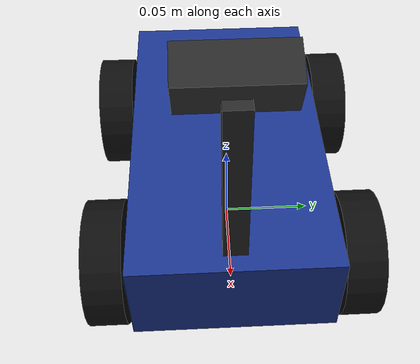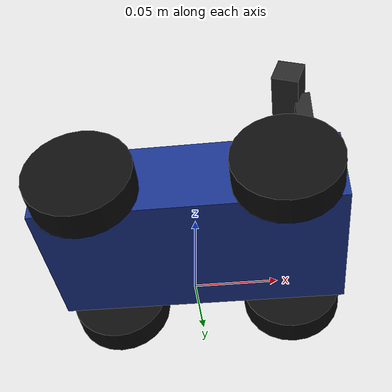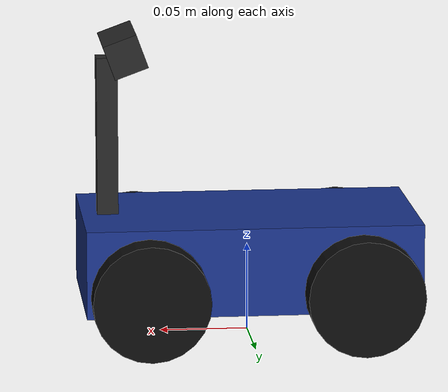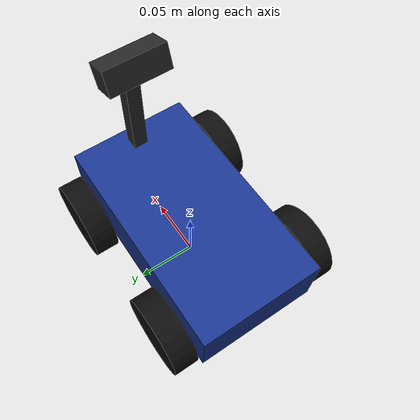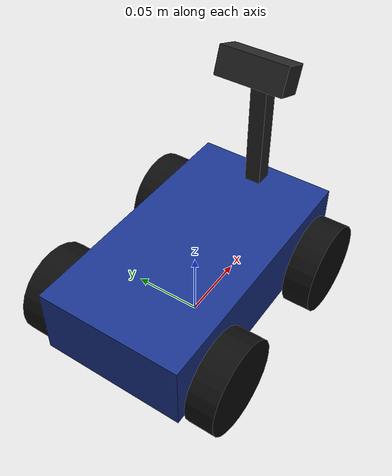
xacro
<?xml version="1.0"?>
<robot xmlns:xacro="http://www.ros.org/wiki/xacro" name="fastrobox">

    <xacro:property name="chassis_length" value="0.19" />
    <xacro:property name="chassis_width" value="0.104" />
    <xacro:property name="chassis_height" value="0.05" />
    <xacro:property name="chassis_bottom" value="0.02" />
    <xacro:property name="chassis_mass" value="0.8" />

    <xacro:property name="wheel_radius" value="0.033" />
    <xacro:property name="wheel_width" value="0.02" />
    <xacro:property name="wheel_mass" value="0.05" />
    <xacro:property name="wheel_x" value="0.06" />
    <!-- Wheel centres. The outer tyre faces come to +-0.075. -->
    <xacro:property name="wheel_y" value="0.065" />
    <xacro:property name="effective_track" value="0.22" />

    <xacro:property name="camera_x" value="0.08" />
    <xacro:property name="camera_z" value="0.16" />
    <xacro:property name="camera_pitch" value="0.35" />
    <xacro:property name="camera_hfov" value="1.3963" />
    <xacro:property name="camera_width" value="640" />
    <xacro:property name="camera_height" value="480" />

    <xacro:macro name="box_inertia" params="m x y z">
        <inertial>
            <mass value="${m}" />
            <inertia ixx="${m*(y*y+z*z)/12}" ixy="0" ixz="0"
                     iyy="${m*(x*x+z*z)/12}" iyz="0"
                     izz="${m*(x*x+y*y)/12}" />
        </inertial>
    </xacro:macro>

    <material name="chassis_blue"><color rgba="0.10 0.20 0.55 1" /></material>
    <material name="tyre_black"><color rgba="0.05 0.05 0.05 1" /></material>
    <material name="camera_dark"><color rgba="0.15 0.15 0.15 1" /></material>

    <link name="base_link" />

    <joint name="chassis_joint" type="fixed">
        <parent link="base_link" />
        <child link="chassis" />
        <origin xyz="0 0 ${chassis_bottom + chassis_height/2}" />
    </joint>

    <link name="chassis">
        <visual>
            <geometry><box size="${chassis_length} ${chassis_width} ${chassis_height}" /></geometry>
            <material name="chassis_blue" />
        </visual>
        <collision>
            <geometry><box size="${chassis_length} ${chassis_width} ${chassis_height}" /></geometry>
        </collision>
        <xacro:box_inertia m="${chassis_mass}" x="${chassis_length}"
                           y="${chassis_width}" z="${chassis_height}" />
    </link>

    <xacro:macro name="wheel" params="name x y">
        <joint name="${name}_joint" type="continuous">
            <parent link="base_link" />
            <child link="${name}" />
            <origin xyz="${x} ${y} ${wheel_radius}" rpy="${-pi/2} 0 0" />
            <axis xyz="0 0 1" />
        </joint>
        <link name="${name}">
            <visual>
                <geometry><cylinder radius="${wheel_radius}" length="${wheel_width}" /></geometry>
                <material name="tyre_black" />
            </visual>
            <collision>
                <geometry><cylinder radius="${wheel_radius}" length="${wheel_width}" /></geometry>
            </collision>
            <inertial>
                <mass value="${wheel_mass}" />
                <inertia ixx="${wheel_mass*(3*wheel_radius*wheel_radius+wheel_width*wheel_width)/12}"
                         ixy="0" ixz="0"
                         iyy="${wheel_mass*(3*wheel_radius*wheel_radius+wheel_width*wheel_width)/12}"
                         iyz="0" izz="${wheel_mass*wheel_radius*wheel_radius/2}" />
            </inertial>
        </link>
        <gazebo reference="${name}">
            <mu1>1.0</mu1>
            <mu2>1.0</mu2>
            <minDepth>0.0002</minDepth>
        </gazebo>
    </xacro:macro>

    <xacro:wheel name="front_left_wheel" x="${wheel_x}" y="${wheel_y}" />
    <xacro:wheel name="front_right_wheel" x="${wheel_x}" y="${-wheel_y}" />
    <xacro:wheel name="rear_left_wheel" x="${-wheel_x}" y="${wheel_y}" />
    <xacro:wheel name="rear_right_wheel" x="${-wheel_x}" y="${-wheel_y}" />

    <gazebo reference="chassis">
        <mu1>0.1</mu1>
        <mu2>0.1</mu2>
    </gazebo>

    <!-- Mast from the chassis deck up to the camera. -->
    <joint name="mast_joint" type="fixed">
        <parent link="chassis" />
        <child link="mast" />
        <origin xyz="${camera_x} 0 ${(camera_z + chassis_bottom + chassis_height)/2 - (chassis_bottom + chassis_height/2)}" />
    </joint>

    <link name="mast">
        <visual>
            <geometry>
                <box size="0.012 0.012 ${camera_z - chassis_bottom - chassis_height}" />
            </geometry>
            <material name="camera_dark" />
        </visual>
        <xacro:box_inertia m="0.02" x="0.012" y="0.012"
                           z="${camera_z - chassis_bottom - chassis_height}" />
    </link>

    <!-- 0.16 m up and tilted 20 degrees down, so the bottom of the frame meets the floor
         about 0.11 m ahead of the nose and the top of the frame still shows the far end
         of the track. -->
    <joint name="camera_joint" type="fixed">
        <parent link="base_link" />
        <child link="camera_link" />
        <origin xyz="${camera_x} 0 ${camera_z}" rpy="0 ${camera_pitch} 0" />
    </joint>

    <link name="camera_link">
        <visual>
            <origin xyz="-0.01 0 0" />
            <geometry><box size="0.02 0.05 0.02" /></geometry>
            <material name="camera_dark" />
        </visual>
        <xacro:box_inertia m="0.03" x="0.02" y="0.05" z="0.02" />
    </link>

    <gazebo reference="camera_link">
        <sensor name="camera" type="camera">
            <topic>camera/image_raw</topic>
            <ignition_frame_id>camera_link</ignition_frame_id>
            <update_rate>30</update_rate>
            <always_on>1</always_on>
            <visualize>false</visualize>
            <camera>
                <horizontal_fov>${camera_hfov}</horizontal_fov>
                <image>
                    <width>${camera_width}</width>
                    <height>${camera_height}</height>
                    <format>R8G8B8</format>
                </image>
                <clip>
                    <near>0.1</near>
                    <far>10.0</far>
                </clip>
                <noise>
                    <type>gaussian</type>
                    <mean>0.0</mean>
                    <stddev>0.005</stddev>
                </noise>
            </camera>
        </sensor>
    </gazebo>

    <gazebo reference="chassis">
        <sensor name="imu" type="imu">
            <topic>imu</topic>
            <ignition_frame_id>base_link</ignition_frame_id>
            <update_rate>100</update_rate>
            <always_on>1</always_on>
            <imu>
                <angular_velocity>
                    <z>
                        <noise type="gaussian">
                            <mean>0.0</mean>
                            <stddev>0.002</stddev>
                        </noise>
                    </z>
                </angular_velocity>
            </imu>
        </sensor>
    </gazebo>

    <gazebo>
        <!-- /cmd_vel in, /odom out. All four wheels are driven, two to a side. -->
        <plugin filename="ignition-gazebo-diff-drive-system"
                name="ignition::gazebo::systems::DiffDrive">
            <left_joint>front_left_wheel_joint</left_joint>
            <left_joint>rear_left_wheel_joint</left_joint>
            <right_joint>front_right_wheel_joint</right_joint>
            <right_joint>rear_right_wheel_joint</right_joint>
            <wheel_separation>${effective_track}</wheel_separation>
            <wheel_radius>${wheel_radius}</wheel_radius>
            <odom_publish_frequency>50</odom_publish_frequency>
            <topic>/cmd_vel</topic>
            <odom_topic>/odom</odom_topic>
            <frame_id>odom</frame_id>
            <child_frame_id>base_link</child_frame_id>
        </plugin>
        <plugin filename="ignition-gazebo-joint-state-publisher-system"
                name="ignition::gazebo::systems::JointStatePublisher">
            <topic>/joint_states</topic>
        </plugin>
        <!-- True pose in the world, for the referee only. The robot does not use it. -->
        <plugin filename="ignition-gazebo-odometry-publisher-system"
                name="ignition::gazebo::systems::OdometryPublisher">
            <odom_frame>world</odom_frame>
            <robot_base_frame>base_link</robot_base_frame>
            <odom_topic>/ground_truth</odom_topic>
            <odom_publish_frequency>50</odom_publish_frequency>
        </plugin>
    </gazebo>
</robot>
